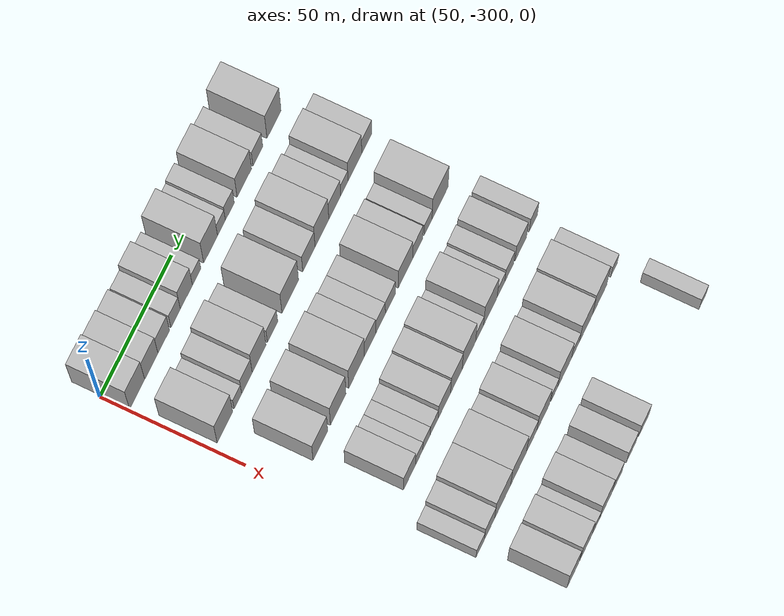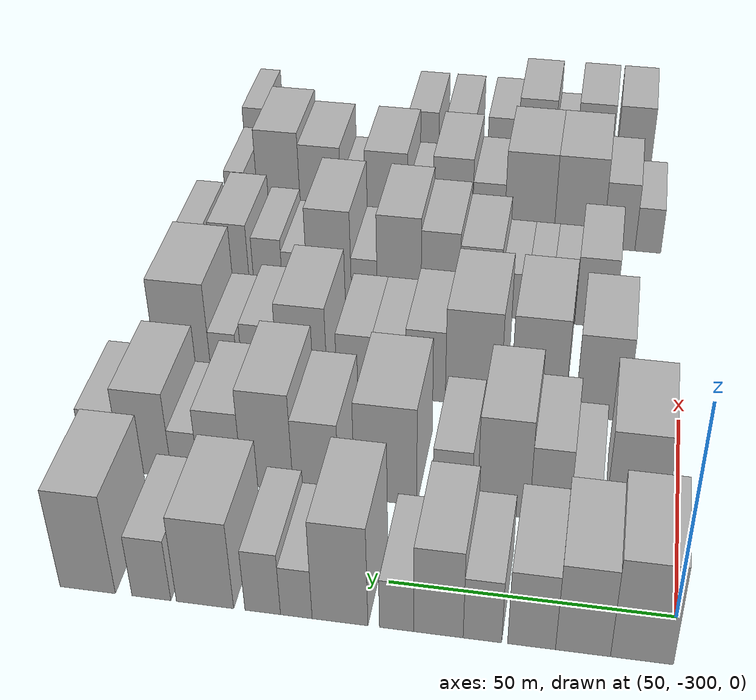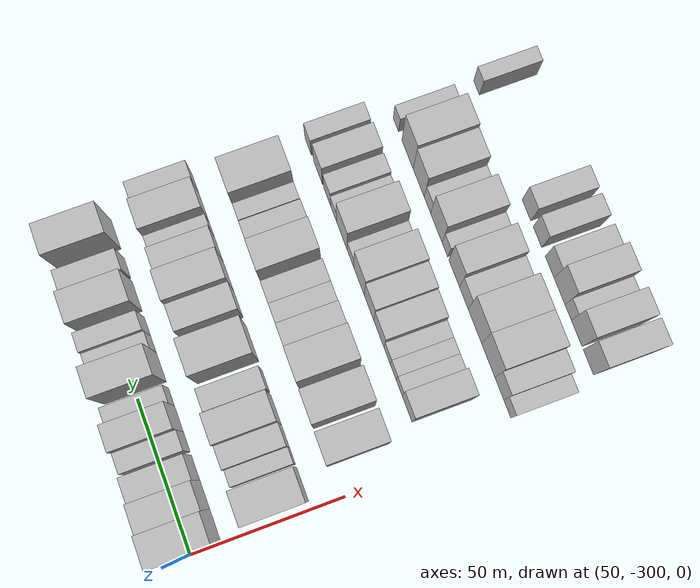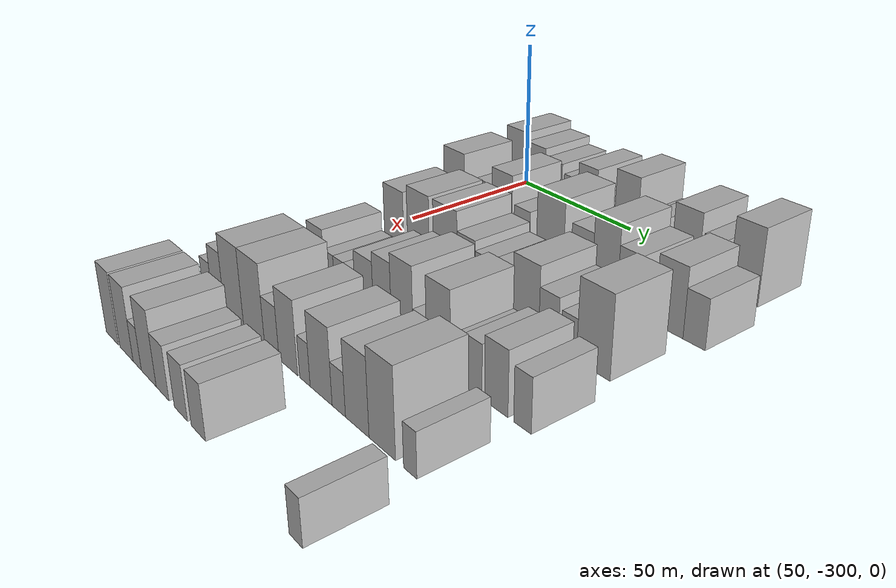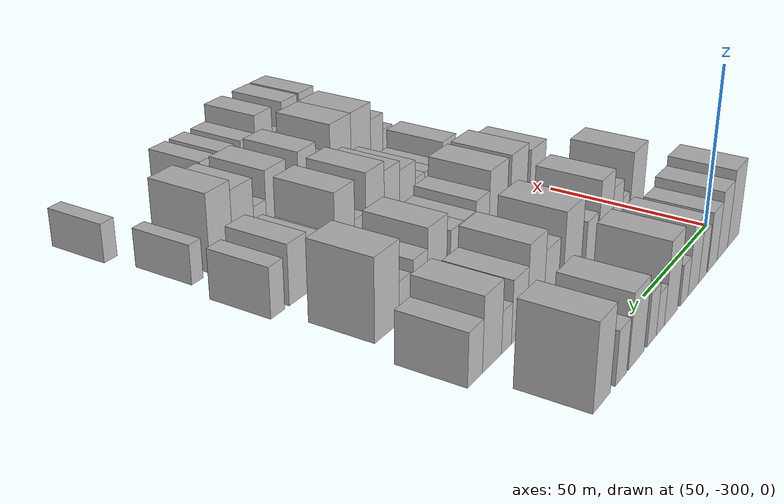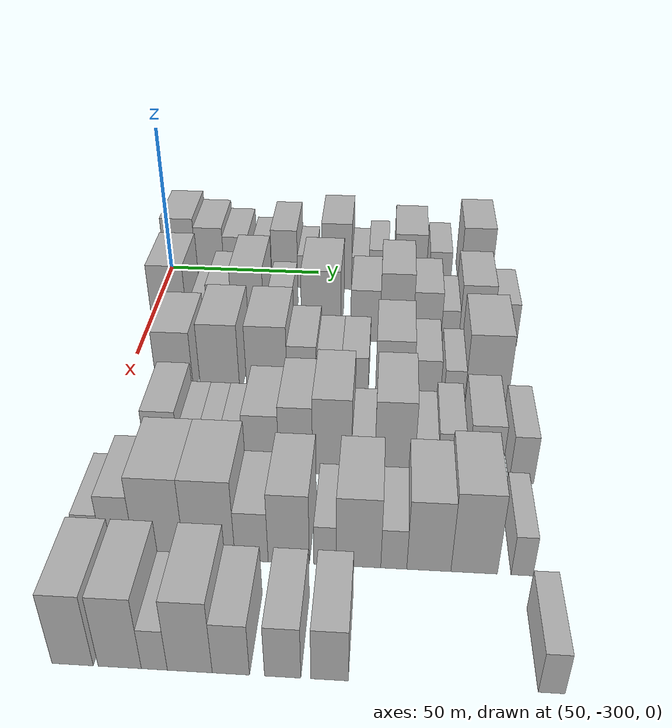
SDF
<sdf version="1.6">
 <world name="default">
  <model name="building_23">
   <static>1</static>
   <pose>50.0000 -294.4013 0 0.000000 0.000000 0.000000</pose>
   <link name="link">
    <pose>0 0 12.00 0 0 0</pose>
    <collision name="collision"><geometry><box><size>20.0000 10.4056 24.0000</size></box></geometry></collision>
    <visual name="visual">
     <cast_shadows>0</cast_shadows>
     <geometry><box><size>20.0000 10.4056 24.0000</size></box></geometry>
     <material>
      <script>
       <uri>model://HANNAS_wall/materials/scripts</uri>
       <uri>model://HANNAS_wall/materials/textures</uri>
       <name>vrc/HANNAS_wall</name>
      </script>
     </material>
    </visual>
   </link>
  </model>
  <model name="building_24">
   <static>1</static>
   <pose>50.0000 -284.6056 0 0.000000 0.000000 0.000000</pose>
   <link name="link">
    <pose>0 0 10.50 0 0 0</pose>
    <collision name="collision"><geometry><box><size>20.0000 9.1858 21.0000</size></box></geometry></collision>
    <visual name="visual">
     <cast_shadows>0</cast_shadows>
     <geometry><box><size>20.0000 9.1858 21.0000</size></box></geometry>
     <material>
      <script>
       <uri>model://HANNAS_wall/materials/scripts</uri>
       <uri>model://HANNAS_wall/materials/textures</uri>
       <name>vrc/HANNAS_wall</name>
      </script>
     </material>
    </visual>
   </link>
  </model>
  <model name="building_25">
   <static>1</static>
   <pose>50.0000 -275.9804 0 0.000000 0.000000 0.000000</pose>
   <link name="link">
    <pose>0 0 9.00 0 0 0</pose>
    <collision name="collision"><geometry><box><size>20.0000 8.0647 18.0000</size></box></geometry></collision>
    <visual name="visual">
     <cast_shadows>0</cast_shadows>
     <geometry><box><size>20.0000 8.0647 18.0000</size></box></geometry>
     <material>
      <script>
       <uri>model://HANNAS_wall/materials/scripts</uri>
       <uri>model://HANNAS_wall/materials/textures</uri>
       <name>vrc/HANNAS_wall</name>
      </script>
     </material>
    </visual>
   </link>
  </model>
  <model name="building_26">
   <static>1</static>
   <pose>50.0000 -267.6769 0 0.000000 0.000000 0.000000</pose>
   <link name="link">
    <pose>0 0 7.50 0 0 0</pose>
    <collision name="collision"><geometry><box><size>20.0000 6.5422 15.0000</size></box></geometry></collision>
    <visual name="visual">
     <cast_shadows>0</cast_shadows>
     <geometry><box><size>20.0000 6.5422 15.0000</size></box></geometry>
     <material>
      <script>
       <uri>model://HANNAS_wall/materials/scripts</uri>
       <uri>model://HANNAS_wall/materials/textures</uri>
       <name>vrc/HANNAS_wall</name>
      </script>
     </material>
    </visual>
   </link>
  </model>
  <model name="building_27">
   <static>1</static>
   <pose>50.0000 -260.1765 0 0.000000 0.000000 0.000000</pose>
   <link name="link">
    <pose>0 0 10.50 0 0 0</pose>
    <collision name="collision"><geometry><box><size>20.0000 8.4587 21.0000</size></box></geometry></collision>
    <visual name="visual">
     <cast_shadows>0</cast_shadows>
     <geometry><box><size>20.0000 8.4587 21.0000</size></box></geometry>
     <material>
      <script>
       <uri>model://HANNAS_wall/materials/scripts</uri>
       <uri>model://HANNAS_wall/materials/textures</uri>
       <name>vrc/HANNAS_wall</name>
      </script>
     </material>
    </visual>
   </link>
  </model>
  <model name="building_28">
   <static>1</static>
   <pose>50.0000 -253.0022 0 0.000000 0.000000 0.000000</pose>
   <link name="link">
    <pose>0 0 6.00 0 0 0</pose>
    <collision name="collision"><geometry><box><size>20.0000 5.8898 12.0000</size></box></geometry></collision>
    <visual name="visual">
     <cast_shadows>0</cast_shadows>
     <geometry><box><size>20.0000 5.8898 12.0000</size></box></geometry>
     <material>
      <script>
       <uri>model://HANNAS_wall/materials/scripts</uri>
       <uri>model://HANNAS_wall/materials/textures</uri>
       <name>vrc/HANNAS_wall</name>
      </script>
     </material>
    </visual>
   </link>
  </model>
  <model name="building_29">
   <static>1</static>
   <pose>50.0000 -243.1957 0 0.000000 0.000000 0.000000</pose>
   <link name="link">
    <pose>0 0 12.00 0 0 0</pose>
    <collision name="collision"><geometry><box><size>20.0000 9.7231 24.0000</size></box></geometry></collision>
    <visual name="visual">
     <cast_shadows>0</cast_shadows>
     <geometry><box><size>20.0000 9.7231 24.0000</size></box></geometry>
     <material>
      <script>
       <uri>model://HANNAS_wall/materials/scripts</uri>
       <uri>model://HANNAS_wall/materials/textures</uri>
       <name>vrc/HANNAS_wall</name>
      </script>
     </material>
    </visual>
   </link>
  </model>
  <model name="building_30">
   <static>1</static>
   <pose>50.0000 -235.5578 0 0.000000 0.000000 0.000000</pose>
   <link name="link">
    <pose>0 0 6.00 0 0 0</pose>
    <collision name="collision"><geometry><box><size>20.0000 5.5527 12.0000</size></box></geometry></collision>
    <visual name="visual">
     <cast_shadows>0</cast_shadows>
     <geometry><box><size>20.0000 5.5527 12.0000</size></box></geometry>
     <material>
      <script>
       <uri>model://HANNAS_wall/materials/scripts</uri>
       <uri>model://HANNAS_wall/materials/textures</uri>
       <name>vrc/HANNAS_wall</name>
      </script>
     </material>
    </visual>
   </link>
  </model>
  <model name="building_31">
   <static>1</static>
   <pose>50.0000 -229.6478 0 0.000000 0.000000 0.000000</pose>
   <link name="link">
    <pose>0 0 7.50 0 0 0</pose>
    <collision name="collision"><geometry><box><size>20.0000 6.2674 15.0000</size></box></geometry></collision>
    <visual name="visual">
     <cast_shadows>0</cast_shadows>
     <geometry><box><size>20.0000 6.2674 15.0000</size></box></geometry>
     <material>
      <script>
       <uri>model://HANNAS_wall/materials/scripts</uri>
       <uri>model://HANNAS_wall/materials/textures</uri>
       <name>vrc/HANNAS_wall</name>
      </script>
     </material>
    </visual>
   </link>
  </model>
  <model name="building_32">
   <static>1</static>
   <pose>50.0000 -219.4046 0 0.000000 0.000000 0.000000</pose>
   <link name="link">
    <pose>0 0 10.50 0 0 0</pose>
    <collision name="collision"><geometry><box><size>20.0000 10.2190 21.0000</size></box></geometry></collision>
    <visual name="visual">
     <cast_shadows>0</cast_shadows>
     <geometry><box><size>20.0000 10.2190 21.0000</size></box></geometry>
     <material>
      <script>
       <uri>model://HANNAS_wall/materials/scripts</uri>
       <uri>model://HANNAS_wall/materials/textures</uri>
       <name>vrc/HANNAS_wall</name>
      </script>
     </material>
    </visual>
   </link>
  </model>
  <model name="building_33">
   <static>1</static>
   <pose>50.0000 -209.7942 0 0.000000 0.000000 0.000000</pose>
   <link name="link">
    <pose>0 0 7.50 0 0 0</pose>
    <collision name="collision"><geometry><box><size>20.0000 7.0017 15.0000</size></box></geometry></collision>
    <visual name="visual">
     <cast_shadows>0</cast_shadows>
     <geometry><box><size>20.0000 7.0017 15.0000</size></box></geometry>
     <material>
      <script>
       <uri>model://HANNAS_wall/materials/scripts</uri>
       <uri>model://HANNAS_wall/materials/textures</uri>
       <name>vrc/HANNAS_wall</name>
      </script>
     </material>
    </visual>
   </link>
  </model>
  <model name="building_34">
   <static>1</static>
   <pose>50.0000 -198.2594 0 0.000000 0.000000 0.000000</pose>
   <link name="link">
    <pose>0 0 12.00 0 0 0</pose>
    <collision name="collision"><geometry><box><size>20.0000 10.0678 24.0000</size></box></geometry></collision>
    <visual name="visual">
     <cast_shadows>0</cast_shadows>
     <geometry><box><size>20.0000 10.0678 24.0000</size></box></geometry>
     <material>
      <script>
       <uri>model://HANNAS_wall/materials/scripts</uri>
       <uri>model://HANNAS_wall/materials/textures</uri>
       <name>vrc/HANNAS_wall</name>
      </script>
     </material>
    </visual>
   </link>
  </model>
  <model name="building_137">
   <static>1</static>
   <pose>79.0000 -292.0540 0 0.000000 0.000000 0.000000</pose>
   <link name="link">
    <pose>0 0 12.00 0 0 0</pose>
    <collision name="collision"><geometry><box><size>20.0000 10.8213 24.0000</size></box></geometry></collision>
    <visual name="visual">
     <cast_shadows>0</cast_shadows>
     <geometry><box><size>20.0000 10.8213 24.0000</size></box></geometry>
     <material>
      <script>
       <uri>model://HANNAS_wall/materials/scripts</uri>
       <uri>model://HANNAS_wall/materials/textures</uri>
       <name>vrc/HANNAS_wall</name>
      </script>
     </material>
    </visual>
   </link>
  </model>
  <model name="building_138">
   <static>1</static>
   <pose>79.0000 -282.9837 0 0.000000 0.000000 0.000000</pose>
   <link name="link">
    <pose>0 0 6.00 0 0 0</pose>
    <collision name="collision"><geometry><box><size>20.0000 5.3194 12.0000</size></box></geometry></collision>
    <visual name="visual">
     <cast_shadows>0</cast_shadows>
     <geometry><box><size>20.0000 5.3194 12.0000</size></box></geometry>
     <material>
      <script>
       <uri>model://HANNAS_wall/materials/scripts</uri>
       <uri>model://HANNAS_wall/materials/textures</uri>
       <name>vrc/HANNAS_wall</name>
      </script>
     </material>
    </visual>
   </link>
  </model>
  <model name="building_139">
   <static>1</static>
   <pose>79.0000 -276.6400 0 0.000000 0.000000 0.000000</pose>
   <link name="link">
    <pose>0 0 9.00 0 0 0</pose>
    <collision name="collision"><geometry><box><size>20.0000 7.3680 18.0000</size></box></geometry></collision>
    <visual name="visual">
     <cast_shadows>0</cast_shadows>
     <geometry><box><size>20.0000 7.3680 18.0000</size></box></geometry>
     <material>
      <script>
       <uri>model://HANNAS_wall/materials/scripts</uri>
       <uri>model://HANNAS_wall/materials/textures</uri>
       <name>vrc/HANNAS_wall</name>
      </script>
     </material>
    </visual>
   </link>
  </model>
  <model name="building_140">
   <static>1</static>
   <pose>79.0000 -268.1261 0 0.000000 0.000000 0.000000</pose>
   <link name="link">
    <pose>0 0 12.00 0 0 0</pose>
    <collision name="collision"><geometry><box><size>20.0000 9.6598 24.0000</size></box></geometry></collision>
    <visual name="visual">
     <cast_shadows>0</cast_shadows>
     <geometry><box><size>20.0000 9.6598 24.0000</size></box></geometry>
     <material>
      <script>
       <uri>model://HANNAS_wall/materials/scripts</uri>
       <uri>model://HANNAS_wall/materials/textures</uri>
       <name>vrc/HANNAS_wall</name>
      </script>
     </material>
    </visual>
   </link>
  </model>
  <model name="building_141">
   <static>1</static>
   <pose>79.0000 -258.6507 0 0.000000 0.000000 0.000000</pose>
   <link name="link">
    <pose>0 0 7.50 0 0 0</pose>
    <collision name="collision"><geometry><box><size>20.0000 7.2911 15.0000</size></box></geometry></collision>
    <visual name="visual">
     <cast_shadows>0</cast_shadows>
     <geometry><box><size>20.0000 7.2911 15.0000</size></box></geometry>
     <material>
      <script>
       <uri>model://HANNAS_wall/materials/scripts</uri>
       <uri>model://HANNAS_wall/materials/textures</uri>
       <name>vrc/HANNAS_wall</name>
      </script>
     </material>
    </visual>
   </link>
  </model>
  <model name="building_142">
   <static>1</static>
   <pose>79.0000 -246.1406 0 0.000000 0.000000 0.000000</pose>
   <link name="link">
    <pose>0 0 12.00 0 0 0</pose>
    <collision name="collision"><geometry><box><size>20.0000 11.7292 24.0000</size></box></geometry></collision>
    <visual name="visual">
     <cast_shadows>0</cast_shadows>
     <geometry><box><size>20.0000 11.7292 24.0000</size></box></geometry>
     <material>
      <script>
       <uri>model://HANNAS_wall/materials/scripts</uri>
       <uri>model://HANNAS_wall/materials/textures</uri>
       <name>vrc/HANNAS_wall</name>
      </script>
     </material>
    </visual>
   </link>
  </model>
  <model name="building_143">
   <static>1</static>
   <pose>79.0000 -232.8889 0 0.000000 0.000000 0.000000</pose>
   <link name="link">
    <pose>0 0 9.00 0 0 0</pose>
    <collision name="collision"><geometry><box><size>20.0000 8.7742 18.0000</size></box></geometry></collision>
    <visual name="visual">
     <cast_shadows>0</cast_shadows>
     <geometry><box><size>20.0000 8.7742 18.0000</size></box></geometry>
     <material>
      <script>
       <uri>model://HANNAS_wall/materials/scripts</uri>
       <uri>model://HANNAS_wall/materials/textures</uri>
       <name>vrc/HANNAS_wall</name>
      </script>
     </material>
    </visual>
   </link>
  </model>
  <model name="building_144">
   <static>1</static>
   <pose>79.0000 -223.5871 0 0.000000 0.000000 0.000000</pose>
   <link name="link">
    <pose>0 0 12.00 0 0 0</pose>
    <collision name="collision"><geometry><box><size>20.0000 9.8293 24.0000</size></box></geometry></collision>
    <visual name="visual">
     <cast_shadows>0</cast_shadows>
     <geometry><box><size>20.0000 9.8293 24.0000</size></box></geometry>
     <material>
      <script>
       <uri>model://HANNAS_wall/materials/scripts</uri>
       <uri>model://HANNAS_wall/materials/textures</uri>
       <name>vrc/HANNAS_wall</name>
      </script>
     </material>
    </visual>
   </link>
  </model>
  <model name="building_145">
   <static>1</static>
   <pose>79.0000 -214.4457 0 0.000000 0.000000 0.000000</pose>
   <link name="link">
    <pose>0 0 9.00 0 0 0</pose>
    <collision name="collision"><geometry><box><size>20.0000 8.4535 18.0000</size></box></geometry></collision>
    <visual name="visual">
     <cast_shadows>0</cast_shadows>
     <geometry><box><size>20.0000 8.4535 18.0000</size></box></geometry>
     <material>
      <script>
       <uri>model://HANNAS_wall/materials/scripts</uri>
       <uri>model://HANNAS_wall/materials/textures</uri>
       <name>vrc/HANNAS_wall</name>
      </script>
     </material>
    </visual>
   </link>
  </model>
  <model name="building_146">
   <static>1</static>
   <pose>79.0000 -207.5660 0 0.000000 0.000000 0.000000</pose>
   <link name="link">
    <pose>0 0 6.00 0 0 0</pose>
    <collision name="collision"><geometry><box><size>20.0000 5.3060 12.0000</size></box></geometry></collision>
    <visual name="visual">
     <cast_shadows>0</cast_shadows>
     <geometry><box><size>20.0000 5.3060 12.0000</size></box></geometry>
     <material>
      <script>
       <uri>model://HANNAS_wall/materials/scripts</uri>
       <uri>model://HANNAS_wall/materials/textures</uri>
       <name>vrc/HANNAS_wall</name>
      </script>
     </material>
    </visual>
   </link>
  </model>
  <model name="building_147">
   <static>1</static>
   <pose>79.0000 -199.9691 0 0.000000 0.000000 0.000000</pose>
   <link name="link">
    <pose>0 0 10.50 0 0 0</pose>
    <collision name="collision"><geometry><box><size>20.0000 9.8878 21.0000</size></box></geometry></collision>
    <visual name="visual">
     <cast_shadows>0</cast_shadows>
     <geometry><box><size>20.0000 9.8878 21.0000</size></box></geometry>
     <material>
      <script>
       <uri>model://HANNAS_wall/materials/scripts</uri>
       <uri>model://HANNAS_wall/materials/textures</uri>
       <name>vrc/HANNAS_wall</name>
      </script>
     </material>
    </visual>
   </link>
  </model>
  <model name="building_148">
   <static>1</static>
   <pose>79.0000 -191.3534 0 0.000000 0.000000 0.000000</pose>
   <link name="link">
    <pose>0 0 7.50 0 0 0</pose>
    <collision name="collision"><geometry><box><size>20.0000 7.3436 15.0000</size></box></geometry></collision>
    <visual name="visual">
     <cast_shadows>0</cast_shadows>
     <geometry><box><size>20.0000 7.3436 15.0000</size></box></geometry>
     <material>
      <script>
       <uri>model://HANNAS_wall/materials/scripts</uri>
       <uri>model://HANNAS_wall/materials/textures</uri>
       <name>vrc/HANNAS_wall</name>
      </script>
     </material>
    </visual>
   </link>
  </model>
  <model name="building_244">
   <static>1</static>
   <pose>108.0000 -284.5847 0 0.000000 0.000000 0.000000</pose>
   <link name="link">
    <pose>0 0 10.50 0 0 0</pose>
    <collision name="collision"><geometry><box><size>20.0000 10.2962 21.0000</size></box></geometry></collision>
    <visual name="visual">
     <cast_shadows>0</cast_shadows>
     <geometry><box><size>20.0000 10.2962 21.0000</size></box></geometry>
     <material>
      <script>
       <uri>model://HANNAS_wall/materials/scripts</uri>
       <uri>model://HANNAS_wall/materials/textures</uri>
       <name>vrc/HANNAS_wall</name>
      </script>
     </material>
    </visual>
   </link>
  </model>
  <model name="building_245">
   <static>1</static>
   <pose>108.0000 -271.9712 0 0.000000 0.000000 0.000000</pose>
   <link name="link">
    <pose>0 0 12.00 0 0 0</pose>
    <collision name="collision"><geometry><box><size>20.0000 10.9308 24.0000</size></box></geometry></collision>
    <visual name="visual">
     <cast_shadows>0</cast_shadows>
     <geometry><box><size>20.0000 10.9308 24.0000</size></box></geometry>
     <material>
      <script>
       <uri>model://HANNAS_wall/materials/scripts</uri>
       <uri>model://HANNAS_wall/materials/textures</uri>
       <name>vrc/HANNAS_wall</name>
      </script>
     </material>
    </visual>
   </link>
  </model>
  <model name="building_246">
   <static>1</static>
   <pose>108.0000 -258.9208 0 0.000000 0.000000 0.000000</pose>
   <link name="link">
    <pose>0 0 12.00 0 0 0</pose>
    <collision name="collision"><geometry><box><size>20.0000 11.1700 24.0000</size></box></geometry></collision>
    <visual name="visual">
     <cast_shadows>0</cast_shadows>
     <geometry><box><size>20.0000 11.1700 24.0000</size></box></geometry>
     <material>
      <script>
       <uri>model://HANNAS_wall/materials/scripts</uri>
       <uri>model://HANNAS_wall/materials/textures</uri>
       <name>vrc/HANNAS_wall</name>
      </script>
     </material>
    </visual>
   </link>
  </model>
  <model name="building_247">
   <static>1</static>
   <pose>108.0000 -249.3037 0 0.000000 0.000000 0.000000</pose>
   <link name="link">
    <pose>0 0 9.00 0 0 0</pose>
    <collision name="collision"><geometry><box><size>20.0000 8.0643 18.0000</size></box></geometry></collision>
    <visual name="visual">
     <cast_shadows>0</cast_shadows>
     <geometry><box><size>20.0000 8.0643 18.0000</size></box></geometry>
     <material>
      <script>
       <uri>model://HANNAS_wall/materials/scripts</uri>
       <uri>model://HANNAS_wall/materials/textures</uri>
       <name>vrc/HANNAS_wall</name>
      </script>
     </material>
    </visual>
   </link>
  </model>
  <model name="building_248">
   <static>1</static>
   <pose>108.0000 -241.8437 0 0.000000 0.000000 0.000000</pose>
   <link name="link">
    <pose>0 0 7.50 0 0 0</pose>
    <collision name="collision"><geometry><box><size>20.0000 6.8556 15.0000</size></box></geometry></collision>
    <visual name="visual">
     <cast_shadows>0</cast_shadows>
     <geometry><box><size>20.0000 6.8556 15.0000</size></box></geometry>
     <material>
      <script>
       <uri>model://HANNAS_wall/materials/scripts</uri>
       <uri>model://HANNAS_wall/materials/textures</uri>
       <name>vrc/HANNAS_wall</name>
      </script>
     </material>
    </visual>
   </link>
  </model>
  <model name="building_249">
   <static>1</static>
   <pose>108.0000 -234.7625 0 0.000000 0.000000 0.000000</pose>
   <link name="link">
    <pose>0 0 7.50 0 0 0</pose>
    <collision name="collision"><geometry><box><size>20.0000 7.3069 15.0000</size></box></geometry></collision>
    <visual name="visual">
     <cast_shadows>0</cast_shadows>
     <geometry><box><size>20.0000 7.3069 15.0000</size></box></geometry>
     <material>
      <script>
       <uri>model://HANNAS_wall/materials/scripts</uri>
       <uri>model://HANNAS_wall/materials/textures</uri>
       <name>vrc/HANNAS_wall</name>
      </script>
     </material>
    </visual>
   </link>
  </model>
  <model name="building_250">
   <static>1</static>
   <pose>108.0000 -223.9552 0 0.000000 0.000000 0.000000</pose>
   <link name="link">
    <pose>0 0 10.50 0 0 0</pose>
    <collision name="collision"><geometry><box><size>20.0000 10.3077 21.0000</size></box></geometry></collision>
    <visual name="visual">
     <cast_shadows>0</cast_shadows>
     <geometry><box><size>20.0000 10.3077 21.0000</size></box></geometry>
     <material>
      <script>
       <uri>model://HANNAS_wall/materials/scripts</uri>
       <uri>model://HANNAS_wall/materials/textures</uri>
       <name>vrc/HANNAS_wall</name>
      </script>
     </material>
    </visual>
   </link>
  </model>
  <model name="building_251">
   <static>1</static>
   <pose>108.0000 -215.1153 0 0.000000 0.000000 0.000000</pose>
   <link name="link">
    <pose>0 0 7.50 0 0 0</pose>
    <collision name="collision"><geometry><box><size>20.0000 7.3721 15.0000</size></box></geometry></collision>
    <visual name="visual">
     <cast_shadows>0</cast_shadows>
     <geometry><box><size>20.0000 7.3721 15.0000</size></box></geometry>
     <material>
      <script>
       <uri>model://HANNAS_wall/materials/scripts</uri>
       <uri>model://HANNAS_wall/materials/textures</uri>
       <name>vrc/HANNAS_wall</name>
      </script>
     </material>
    </visual>
   </link>
  </model>
  <model name="building_252">
   <static>1</static>
   <pose>108.0000 -207.5913 0 0.000000 0.000000 0.000000</pose>
   <link name="link">
    <pose>0 0 6.00 0 0 0</pose>
    <collision name="collision"><geometry><box><size>20.0000 5.6759 12.0000</size></box></geometry></collision>
    <visual name="visual">
     <cast_shadows>0</cast_shadows>
     <geometry><box><size>20.0000 5.6759 12.0000</size></box></geometry>
     <material>
      <script>
       <uri>model://HANNAS_wall/materials/scripts</uri>
       <uri>model://HANNAS_wall/materials/textures</uri>
       <name>vrc/HANNAS_wall</name>
      </script>
     </material>
    </visual>
   </link>
  </model>
  <model name="building_253">
   <static>1</static>
   <pose>108.0000 -198.9198 0 0.000000 0.000000 0.000000</pose>
   <link name="link">
    <pose>0 0 12.00 0 0 0</pose>
    <collision name="collision"><geometry><box><size>20.0000 11.6672 24.0000</size></box></geometry></collision>
    <visual name="visual">
     <cast_shadows>0</cast_shadows>
     <geometry><box><size>20.0000 11.6672 24.0000</size></box></geometry>
     <material>
      <script>
       <uri>model://HANNAS_wall/materials/scripts</uri>
       <uri>model://HANNAS_wall/materials/textures</uri>
       <name>vrc/HANNAS_wall</name>
      </script>
     </material>
    </visual>
   </link>
  </model>
  <model name="building_347">
   <static>1</static>
   <pose>137.0000 -281.7446 0 0.000000 0.000000 0.000000</pose>
   <link name="link">
    <pose>0 0 9.00 0 0 0</pose>
    <collision name="collision"><geometry><box><size>20.0000 8.5224 18.0000</size></box></geometry></collision>
    <visual name="visual">
     <cast_shadows>0</cast_shadows>
     <geometry><box><size>20.0000 8.5224 18.0000</size></box></geometry>
     <material>
      <script>
       <uri>model://HANNAS_wall/materials/scripts</uri>
       <uri>model://HANNAS_wall/materials/textures</uri>
       <name>vrc/HANNAS_wall</name>
      </script>
     </material>
    </visual>
   </link>
  </model>
  <model name="building_348">
   <static>1</static>
   <pose>137.0000 -274.8604 0 0.000000 0.000000 0.000000</pose>
   <link name="link">
    <pose>0 0 6.00 0 0 0</pose>
    <collision name="collision"><geometry><box><size>20.0000 5.2460 12.0000</size></box></geometry></collision>
    <visual name="visual">
     <cast_shadows>0</cast_shadows>
     <geometry><box><size>20.0000 5.2460 12.0000</size></box></geometry>
     <material>
      <script>
       <uri>model://HANNAS_wall/materials/scripts</uri>
       <uri>model://HANNAS_wall/materials/textures</uri>
       <name>vrc/HANNAS_wall</name>
      </script>
     </material>
    </visual>
   </link>
  </model>
  <model name="building_349">
   <static>1</static>
   <pose>137.0000 -269.6066 0 0.000000 0.000000 0.000000</pose>
   <link name="link">
    <pose>0 0 6.00 0 0 0</pose>
    <collision name="collision"><geometry><box><size>20.0000 5.2614 12.0000</size></box></geometry></collision>
    <visual name="visual">
     <cast_shadows>0</cast_shadows>
     <geometry><box><size>20.0000 5.2614 12.0000</size></box></geometry>
     <material>
      <script>
       <uri>model://HANNAS_wall/materials/scripts</uri>
       <uri>model://HANNAS_wall/materials/textures</uri>
       <name>vrc/HANNAS_wall</name>
      </script>
     </material>
    </visual>
   </link>
  </model>
  <model name="building_350">
   <static>1</static>
   <pose>137.0000 -264.1627 0 0.000000 0.000000 0.000000</pose>
   <link name="link">
    <pose>0 0 6.00 0 0 0</pose>
    <collision name="collision"><geometry><box><size>20.0000 5.6265 12.0000</size></box></geometry></collision>
    <visual name="visual">
     <cast_shadows>0</cast_shadows>
     <geometry><box><size>20.0000 5.6265 12.0000</size></box></geometry>
     <material>
      <script>
       <uri>model://HANNAS_wall/materials/scripts</uri>
       <uri>model://HANNAS_wall/materials/textures</uri>
       <name>vrc/HANNAS_wall</name>
      </script>
     </material>
    </visual>
   </link>
  </model>
  <model name="building_351">
   <static>1</static>
   <pose>137.0000 -256.8835 0 0.000000 0.000000 0.000000</pose>
   <link name="link">
    <pose>0 0 9.00 0 0 0</pose>
    <collision name="collision"><geometry><box><size>20.0000 8.9320 18.0000</size></box></geometry></collision>
    <visual name="visual">
     <cast_shadows>0</cast_shadows>
     <geometry><box><size>20.0000 8.9320 18.0000</size></box></geometry>
     <material>
      <script>
       <uri>model://HANNAS_wall/materials/scripts</uri>
       <uri>model://HANNAS_wall/materials/textures</uri>
       <name>vrc/HANNAS_wall</name>
      </script>
     </material>
    </visual>
   </link>
  </model>
  <model name="building_352">
   <static>1</static>
   <pose>137.0000 -248.2038 0 0.000000 0.000000 0.000000</pose>
   <link name="link">
    <pose>0 0 10.50 0 0 0</pose>
    <collision name="collision"><geometry><box><size>20.0000 8.4273 21.0000</size></box></geometry></collision>
    <visual name="visual">
     <cast_shadows>0</cast_shadows>
     <geometry><box><size>20.0000 8.4273 21.0000</size></box></geometry>
     <material>
      <script>
       <uri>model://HANNAS_wall/materials/scripts</uri>
       <uri>model://HANNAS_wall/materials/textures</uri>
       <name>vrc/HANNAS_wall</name>
      </script>
     </material>
    </visual>
   </link>
  </model>
  <model name="building_353">
   <static>1</static>
   <pose>137.0000 -239.1440 0 0.000000 0.000000 0.000000</pose>
   <link name="link">
    <pose>0 0 12.00 0 0 0</pose>
    <collision name="collision"><geometry><box><size>20.0000 9.6923 24.0000</size></box></geometry></collision>
    <visual name="visual">
     <cast_shadows>0</cast_shadows>
     <geometry><box><size>20.0000 9.6923 24.0000</size></box></geometry>
     <material>
      <script>
       <uri>model://HANNAS_wall/materials/scripts</uri>
       <uri>model://HANNAS_wall/materials/textures</uri>
       <name>vrc/HANNAS_wall</name>
      </script>
     </material>
    </visual>
   </link>
  </model>
  <model name="building_354">
   <static>1</static>
   <pose>137.0000 -231.4386 0 0.000000 0.000000 0.000000</pose>
   <link name="link">
    <pose>0 0 6.00 0 0 0</pose>
    <collision name="collision"><geometry><box><size>20.0000 5.7184 12.0000</size></box></geometry></collision>
    <visual name="visual">
     <cast_shadows>0</cast_shadows>
     <geometry><box><size>20.0000 5.7184 12.0000</size></box></geometry>
     <material>
      <script>
       <uri>model://HANNAS_wall/materials/scripts</uri>
       <uri>model://HANNAS_wall/materials/textures</uri>
       <name>vrc/HANNAS_wall</name>
      </script>
     </material>
    </visual>
   </link>
  </model>
  <model name="building_355">
   <static>1</static>
   <pose>137.0000 -223.6517 0 0.000000 0.000000 0.000000</pose>
   <link name="link">
    <pose>0 0 12.00 0 0 0</pose>
    <collision name="collision"><geometry><box><size>20.0000 9.8555 24.0000</size></box></geometry></collision>
    <visual name="visual">
     <cast_shadows>0</cast_shadows>
     <geometry><box><size>20.0000 9.8555 24.0000</size></box></geometry>
     <material>
      <script>
       <uri>model://HANNAS_wall/materials/scripts</uri>
       <uri>model://HANNAS_wall/materials/textures</uri>
       <name>vrc/HANNAS_wall</name>
      </script>
     </material>
    </visual>
   </link>
  </model>
  <model name="building_356">
   <static>1</static>
   <pose>137.0000 -215.9314 0 0.000000 0.000000 0.000000</pose>
   <link name="link">
    <pose>0 0 6.00 0 0 0</pose>
    <collision name="collision"><geometry><box><size>20.0000 5.5850 12.0000</size></box></geometry></collision>
    <visual name="visual">
     <cast_shadows>0</cast_shadows>
     <geometry><box><size>20.0000 5.5850 12.0000</size></box></geometry>
     <material>
      <script>
       <uri>model://HANNAS_wall/materials/scripts</uri>
       <uri>model://HANNAS_wall/materials/textures</uri>
       <name>vrc/HANNAS_wall</name>
      </script>
     </material>
    </visual>
   </link>
  </model>
  <model name="building_357">
   <static>1</static>
   <pose>137.0000 -209.8949 0 0.000000 0.000000 0.000000</pose>
   <link name="link">
    <pose>0 0 7.50 0 0 0</pose>
    <collision name="collision"><geometry><box><size>20.0000 6.4879 15.0000</size></box></geometry></collision>
    <visual name="visual">
     <cast_shadows>0</cast_shadows>
     <geometry><box><size>20.0000 6.4879 15.0000</size></box></geometry>
     <material>
      <script>
       <uri>model://HANNAS_wall/materials/scripts</uri>
       <uri>model://HANNAS_wall/materials/textures</uri>
       <name>vrc/HANNAS_wall</name>
      </script>
     </material>
    </visual>
   </link>
  </model>
  <model name="building_358">
   <static>1</static>
   <pose>137.0000 -201.4519 0 0.000000 0.000000 0.000000</pose>
   <link name="link">
    <pose>0 0 9.00 0 0 0</pose>
    <collision name="collision"><geometry><box><size>20.0000 8.3982 18.0000</size></box></geometry></collision>
    <visual name="visual">
     <cast_shadows>0</cast_shadows>
     <geometry><box><size>20.0000 8.3982 18.0000</size></box></geometry>
     <material>
      <script>
       <uri>model://HANNAS_wall/materials/scripts</uri>
       <uri>model://HANNAS_wall/materials/textures</uri>
       <name>vrc/HANNAS_wall</name>
      </script>
     </material>
    </visual>
   </link>
  </model>
  <model name="building_359">
   <static>1</static>
   <pose>137.0000 -192.2459 0 0.000000 0.000000 0.000000</pose>
   <link name="link">
    <pose>0 0 7.50 0 0 0</pose>
    <collision name="collision"><geometry><box><size>20.0000 6.0137 15.0000</size></box></geometry></collision>
    <visual name="visual">
     <cast_shadows>0</cast_shadows>
     <geometry><box><size>20.0000 6.0137 15.0000</size></box></geometry>
     <material>
      <script>
       <uri>model://HANNAS_wall/materials/scripts</uri>
       <uri>model://HANNAS_wall/materials/textures</uri>
       <name>vrc/HANNAS_wall</name>
      </script>
     </material>
    </visual>
   </link>
  </model>
  <model name="building_465">
   <static>1</static>
   <pose>166.0000 -292.4106 0 0.000000 0.000000 0.000000</pose>
   <link name="link">
    <pose>0 0 6.00 0 0 0</pose>
    <collision name="collision"><geometry><box><size>20.0000 5.9255 12.0000</size></box></geometry></collision>
    <visual name="visual">
     <cast_shadows>0</cast_shadows>
     <geometry><box><size>20.0000 5.9255 12.0000</size></box></geometry>
     <material>
      <script>
       <uri>model://HANNAS_wall/materials/scripts</uri>
       <uri>model://HANNAS_wall/materials/textures</uri>
       <name>vrc/HANNAS_wall</name>
      </script>
     </material>
    </visual>
   </link>
  </model>
  <model name="building_466">
   <static>1</static>
   <pose>166.0000 -285.7445 0 0.000000 0.000000 0.000000</pose>
   <link name="link">
    <pose>0 0 9.00 0 0 0</pose>
    <collision name="collision"><geometry><box><size>20.0000 7.4067 18.0000</size></box></geometry></collision>
    <visual name="visual">
     <cast_shadows>0</cast_shadows>
     <geometry><box><size>20.0000 7.4067 18.0000</size></box></geometry>
     <material>
      <script>
       <uri>model://HANNAS_wall/materials/scripts</uri>
       <uri>model://HANNAS_wall/materials/textures</uri>
       <name>vrc/HANNAS_wall</name>
      </script>
     </material>
    </visual>
   </link>
  </model>
  <model name="building_467">
   <static>1</static>
   <pose>166.0000 -276.3525 0 0.000000 0.000000 0.000000</pose>
   <link name="link">
    <pose>0 0 12.00 0 0 0</pose>
    <collision name="collision"><geometry><box><size>20.0000 11.3773 24.0000</size></box></geometry></collision>
    <visual name="visual">
     <cast_shadows>0</cast_shadows>
     <geometry><box><size>20.0000 11.3773 24.0000</size></box></geometry>
     <material>
      <script>
       <uri>model://HANNAS_wall/materials/scripts</uri>
       <uri>model://HANNAS_wall/materials/textures</uri>
       <name>vrc/HANNAS_wall</name>
      </script>
     </material>
    </visual>
   </link>
  </model>
  <model name="building_468">
   <static>1</static>
   <pose>166.0000 -264.8939 0 0.000000 0.000000 0.000000</pose>
   <link name="link">
    <pose>0 0 12.00 0 0 0</pose>
    <collision name="collision"><geometry><box><size>20.0000 11.5400 24.0000</size></box></geometry></collision>
    <visual name="visual">
     <cast_shadows>0</cast_shadows>
     <geometry><box><size>20.0000 11.5400 24.0000</size></box></geometry>
     <material>
      <script>
       <uri>model://HANNAS_wall/materials/scripts</uri>
       <uri>model://HANNAS_wall/materials/textures</uri>
       <name>vrc/HANNAS_wall</name>
      </script>
     </material>
    </visual>
   </link>
  </model>
  <model name="building_469">
   <static>1</static>
   <pose>166.0000 -255.3794 0 0.000000 0.000000 0.000000</pose>
   <link name="link">
    <pose>0 0 7.50 0 0 0</pose>
    <collision name="collision"><geometry><box><size>20.0000 7.4888 15.0000</size></box></geometry></collision>
    <visual name="visual">
     <cast_shadows>0</cast_shadows>
     <geometry><box><size>20.0000 7.4888 15.0000</size></box></geometry>
     <material>
      <script>
       <uri>model://HANNAS_wall/materials/scripts</uri>
       <uri>model://HANNAS_wall/materials/textures</uri>
       <name>vrc/HANNAS_wall</name>
      </script>
     </material>
    </visual>
   </link>
  </model>
  <model name="building_470">
   <static>1</static>
   <pose>166.0000 -246.9981 0 0.000000 0.000000 0.000000</pose>
   <link name="link">
    <pose>0 0 10.50 0 0 0</pose>
    <collision name="collision"><geometry><box><size>20.0000 9.2737 21.0000</size></box></geometry></collision>
    <visual name="visual">
     <cast_shadows>0</cast_shadows>
     <geometry><box><size>20.0000 9.2737 21.0000</size></box></geometry>
     <material>
      <script>
       <uri>model://HANNAS_wall/materials/scripts</uri>
       <uri>model://HANNAS_wall/materials/textures</uri>
       <name>vrc/HANNAS_wall</name>
      </script>
     </material>
    </visual>
   </link>
  </model>
  <model name="building_471">
   <static>1</static>
   <pose>166.0000 -238.8766 0 0.000000 0.000000 0.000000</pose>
   <link name="link">
    <pose>0 0 6.00 0 0 0</pose>
    <collision name="collision"><geometry><box><size>20.0000 4.9694 12.0000</size></box></geometry></collision>
    <visual name="visual">
     <cast_shadows>0</cast_shadows>
     <geometry><box><size>20.0000 4.9694 12.0000</size></box></geometry>
     <material>
      <script>
       <uri>model://HANNAS_wall/materials/scripts</uri>
       <uri>model://HANNAS_wall/materials/textures</uri>
       <name>vrc/HANNAS_wall</name>
      </script>
     </material>
    </visual>
   </link>
  </model>
  <model name="building_472">
   <static>1</static>
   <pose>166.0000 -231.3807 0 0.000000 0.000000 0.000000</pose>
   <link name="link">
    <pose>0 0 10.50 0 0 0</pose>
    <collision name="collision"><geometry><box><size>20.0000 10.0223 21.0000</size></box></geometry></collision>
    <visual name="visual">
     <cast_shadows>0</cast_shadows>
     <geometry><box><size>20.0000 10.0223 21.0000</size></box></geometry>
     <material>
      <script>
       <uri>model://HANNAS_wall/materials/scripts</uri>
       <uri>model://HANNAS_wall/materials/textures</uri>
       <name>vrc/HANNAS_wall</name>
      </script>
     </material>
    </visual>
   </link>
  </model>
  <model name="building_473">
   <static>1</static>
   <pose>166.0000 -223.4693 0 0.000000 0.000000 0.000000</pose>
   <link name="link">
    <pose>0 0 6.00 0 0 0</pose>
    <collision name="collision"><geometry><box><size>20.0000 5.8007 12.0000</size></box></geometry></collision>
    <visual name="visual">
     <cast_shadows>0</cast_shadows>
     <geometry><box><size>20.0000 5.8007 12.0000</size></box></geometry>
     <material>
      <script>
       <uri>model://HANNAS_wall/materials/scripts</uri>
       <uri>model://HANNAS_wall/materials/textures</uri>
       <name>vrc/HANNAS_wall</name>
      </script>
     </material>
    </visual>
   </link>
  </model>
  <model name="building_474">
   <static>1</static>
   <pose>166.0000 -215.6748 0 0.000000 0.000000 0.000000</pose>
   <link name="link">
    <pose>0 0 10.50 0 0 0</pose>
    <collision name="collision"><geometry><box><size>20.0000 9.7882 21.0000</size></box></geometry></collision>
    <visual name="visual">
     <cast_shadows>0</cast_shadows>
     <geometry><box><size>20.0000 9.7882 21.0000</size></box></geometry>
     <material>
      <script>
       <uri>model://HANNAS_wall/materials/scripts</uri>
       <uri>model://HANNAS_wall/materials/textures</uri>
       <name>vrc/HANNAS_wall</name>
      </script>
     </material>
    </visual>
   </link>
  </model>
  <model name="building_475">
   <static>1</static>
   <pose>166.0000 -205.6396 0 0.000000 0.000000 0.000000</pose>
   <link name="link">
    <pose>0 0 12.00 0 0 0</pose>
    <collision name="collision"><geometry><box><size>20.0000 10.2823 24.0000</size></box></geometry></collision>
    <visual name="visual">
     <cast_shadows>0</cast_shadows>
     <geometry><box><size>20.0000 10.2823 24.0000</size></box></geometry>
     <material>
      <script>
       <uri>model://HANNAS_wall/materials/scripts</uri>
       <uri>model://HANNAS_wall/materials/textures</uri>
       <name>vrc/HANNAS_wall</name>
      </script>
     </material>
    </visual>
   </link>
  </model>
  <model name="building_476">
   <static>1</static>
   <pose>166.0000 -195.0901 0 0.000000 0.000000 0.000000</pose>
   <link name="link">
    <pose>0 0 6.00 0 0 0</pose>
    <collision name="collision"><geometry><box><size>20.0000 4.8168 12.0000</size></box></geometry></collision>
    <visual name="visual">
     <cast_shadows>0</cast_shadows>
     <geometry><box><size>20.0000 4.8168 12.0000</size></box></geometry>
     <material>
      <script>
       <uri>model://HANNAS_wall/materials/scripts</uri>
       <uri>model://HANNAS_wall/materials/textures</uri>
       <name>vrc/HANNAS_wall</name>
      </script>
     </material>
    </visual>
   </link>
  </model>
  <model name="building_585">
   <static>1</static>
   <pose>195.0000 -287.6998 0 0.000000 0.000000 0.000000</pose>
   <link name="link">
    <pose>0 0 10.50 0 0 0</pose>
    <collision name="collision"><geometry><box><size>20.0000 8.4439 21.0000</size></box></geometry></collision>
    <visual name="visual">
     <cast_shadows>0</cast_shadows>
     <geometry><box><size>20.0000 8.4439 21.0000</size></box></geometry>
     <material>
      <script>
       <uri>model://HANNAS_wall/materials/scripts</uri>
       <uri>model://HANNAS_wall/materials/textures</uri>
       <name>vrc/HANNAS_wall</name>
      </script>
     </material>
    </visual>
   </link>
  </model>
  <model name="building_586">
   <static>1</static>
   <pose>195.0000 -278.0790 0 0.000000 0.000000 0.000000</pose>
   <link name="link">
    <pose>0 0 10.50 0 0 0</pose>
    <collision name="collision"><geometry><box><size>20.0000 8.7978 21.0000</size></box></geometry></collision>
    <visual name="visual">
     <cast_shadows>0</cast_shadows>
     <geometry><box><size>20.0000 8.7978 21.0000</size></box></geometry>
     <material>
      <script>
       <uri>model://HANNAS_wall/materials/scripts</uri>
       <uri>model://HANNAS_wall/materials/textures</uri>
       <name>vrc/HANNAS_wall</name>
      </script>
     </material>
    </visual>
   </link>
  </model>
  <model name="building_587">
   <static>1</static>
   <pose>195.0000 -271.0467 0 0.000000 0.000000 0.000000</pose>
   <link name="link">
    <pose>0 0 6.00 0 0 0</pose>
    <collision name="collision"><geometry><box><size>20.0000 5.2667 12.0000</size></box></geometry></collision>
    <visual name="visual">
     <cast_shadows>0</cast_shadows>
     <geometry><box><size>20.0000 5.2667 12.0000</size></box></geometry>
     <material>
      <script>
       <uri>model://HANNAS_wall/materials/scripts</uri>
       <uri>model://HANNAS_wall/materials/textures</uri>
       <name>vrc/HANNAS_wall</name>
      </script>
     </material>
    </visual>
   </link>
  </model>
  <model name="building_588">
   <static>1</static>
   <pose>195.0000 -263.8775 0 0.000000 0.000000 0.000000</pose>
   <link name="link">
    <pose>0 0 10.50 0 0 0</pose>
    <collision name="collision"><geometry><box><size>20.0000 9.0716 21.0000</size></box></geometry></collision>
    <visual name="visual">
     <cast_shadows>0</cast_shadows>
     <geometry><box><size>20.0000 9.0716 21.0000</size></box></geometry>
     <material>
      <script>
       <uri>model://HANNAS_wall/materials/scripts</uri>
       <uri>model://HANNAS_wall/materials/textures</uri>
       <name>vrc/HANNAS_wall</name>
      </script>
     </material>
    </visual>
   </link>
  </model>
  <model name="building_589">
   <static>1</static>
   <pose>195.0000 -255.5997 0 0.000000 0.000000 0.000000</pose>
   <link name="link">
    <pose>0 0 7.50 0 0 0</pose>
    <collision name="collision"><geometry><box><size>20.0000 7.4841 15.0000</size></box></geometry></collision>
    <visual name="visual">
     <cast_shadows>0</cast_shadows>
     <geometry><box><size>20.0000 7.4841 15.0000</size></box></geometry>
     <material>
      <script>
       <uri>model://HANNAS_wall/materials/scripts</uri>
       <uri>model://HANNAS_wall/materials/textures</uri>
       <name>vrc/HANNAS_wall</name>
      </script>
     </material>
    </visual>
   </link>
  </model>
  <model name="building_590">
   <static>1</static>
   <pose>195.0000 -245.2360 0 0.000000 0.000000 0.000000</pose>
   <link name="link">
    <pose>0 0 7.50 0 0 0</pose>
    <collision name="collision"><geometry><box><size>20.0000 7.2432 15.0000</size></box></geometry></collision>
    <visual name="visual">
     <cast_shadows>0</cast_shadows>
     <geometry><box><size>20.0000 7.2432 15.0000</size></box></geometry>
     <material>
      <script>
       <uri>model://HANNAS_wall/materials/scripts</uri>
       <uri>model://HANNAS_wall/materials/textures</uri>
       <name>vrc/HANNAS_wall</name>
      </script>
     </material>
    </visual>
   </link>
  </model>
  <model name="building_591">
   <static>1</static>
   <pose>195.0000 -235.8978 0 0.000000 0.000000 0.000000</pose>
   <link name="link">
    <pose>0 0 7.50 0 0 0</pose>
    <collision name="collision"><geometry><box><size>20.0000 7.4331 15.0000</size></box></geometry></collision>
    <visual name="visual">
     <cast_shadows>0</cast_shadows>
     <geometry><box><size>20.0000 7.4331 15.0000</size></box></geometry>
     <material>
      <script>
       <uri>model://HANNAS_wall/materials/scripts</uri>
       <uri>model://HANNAS_wall/materials/textures</uri>
       <name>vrc/HANNAS_wall</name>
      </script>
     </material>
    </visual>
   </link>
  </model>
  <model name="building_592">
   <static>1</static>
   <pose>195.0000 -192.3872 0 0.000000 0.000000 0.000000</pose>
   <link name="link">
    <pose>0 0 6.00 0 0 0</pose>
    <collision name="collision"><geometry><box><size>20.0000 5.1960 12.0000</size></box></geometry></collision>
    <visual name="visual">
     <cast_shadows>0</cast_shadows>
     <geometry><box><size>20.0000 5.1960 12.0000</size></box></geometry>
     <material>
      <script>
       <uri>model://HANNAS_wall/materials/scripts</uri>
       <uri>model://HANNAS_wall/materials/textures</uri>
       <name>vrc/HANNAS_wall</name>
      </script>
     </material>
    </visual>
   </link>
  </model>
 </world>
</sdf>
